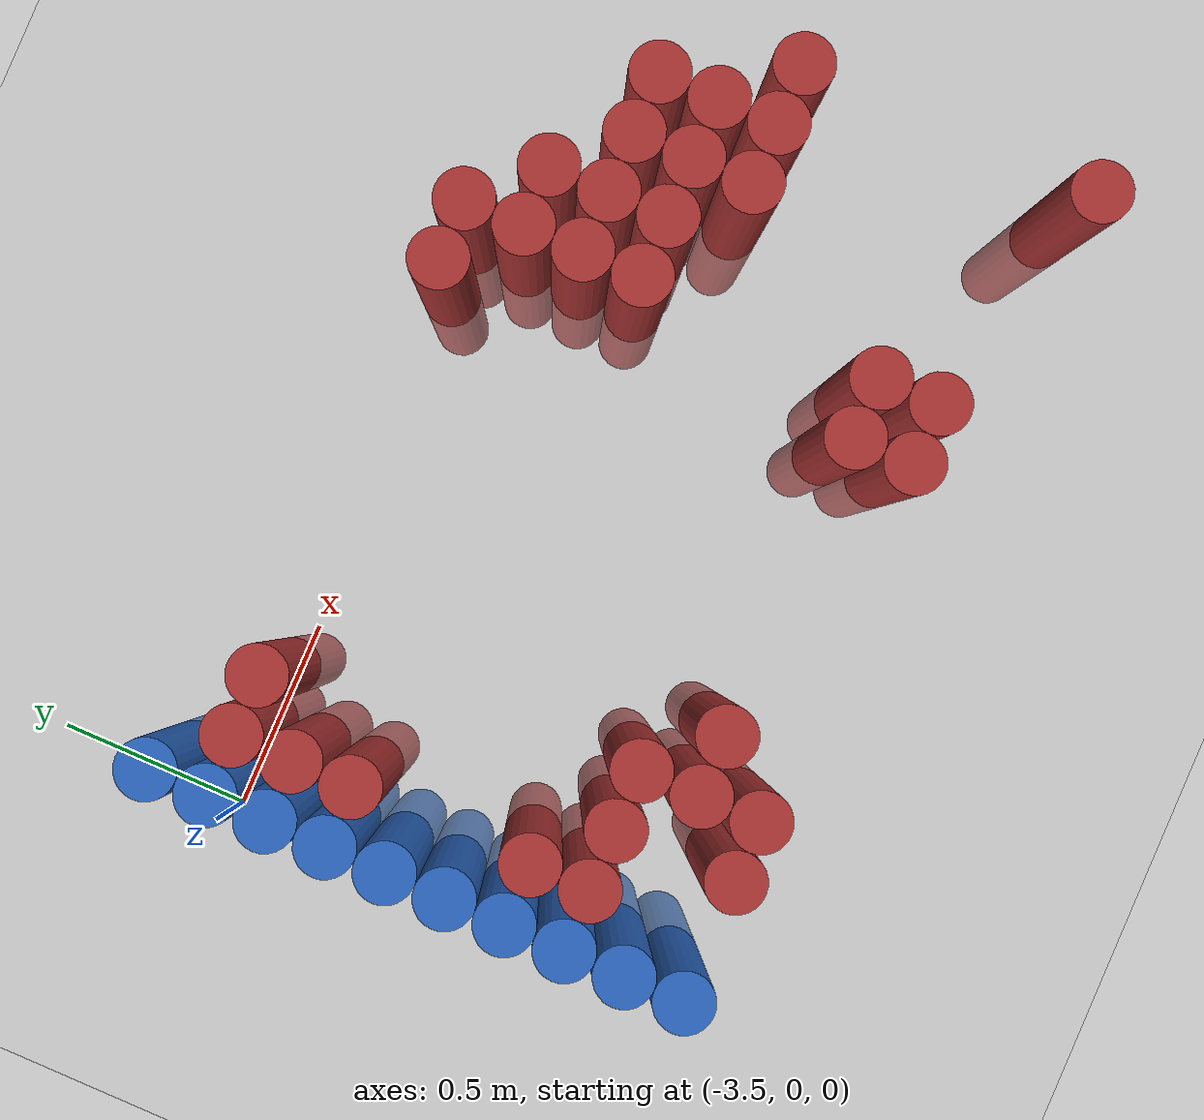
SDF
<sdf version="1.6">
 <world name="default">
  <model name="ground_plane">
   <static>1</static>
   <link name="link">
    <collision name="collision">
     <geometry><plane><normal>0 0 1</normal><size>100 100</size></plane></geometry>
     <surface><friction><ode><mu>100</mu><mu2>50</mu2></ode></friction></surface>
    </collision>
    <visual name="visual">
     <cast_shadows>0</cast_shadows>
     <geometry><plane><normal>0 0 1</normal><size>100 100</size></plane></geometry>
     <material>
      <script><uri>file://media/materials/scripts/gazebo.material</uri><name>Gazebo/Grey</name></script>
     </material>
    </visual>
   </link>
  </model>
  <model name="unit_cylinder_99">
   <static>1</static>
   <pose>-3.425000 -1.175000 0.000000 0.000000 0.000000 0.000000</pose>
   <link name="link">
    <inertial>
     <mass>1</mass>
     <inertia><ixx>0.145833</ixx><ixy>0</ixy><ixz>0</ixz><iyy>0.145833</iyy><iyz>0</iyz><izz>0.125</izz></inertia>
    </inertial>
    <collision name="collision">
     <geometry><cylinder><radius>0.075000</radius><length>1.5</length></cylinder></geometry>
    </collision>
    <visual name="visual">
     <geometry><cylinder><radius>0.075000</radius><length>1.5</length></cylinder></geometry>
     <material>
      <ambient>0.152000 0.379000 0.720000 1</ambient>
      <diffuse>0.152000 0.379000 0.720000 1</diffuse>
     </material>
     <material>
      <script><name>Gazebo/Grey</name><uri>file://media/materials/scripts/gazebo.material</uri></script>
     </material>
    </visual>
   </link>
  </model>
  <model name="unit_cylinder_101">
   <static>1</static>
   <pose>-3.425000 -1.025000 0.000000 0.000000 0.000000 0.000000</pose>
   <link name="link">
    <inertial>
     <mass>1</mass>
     <inertia><ixx>0.145833</ixx><ixy>0</ixy><ixz>0</ixz><iyy>0.145833</iyy><iyz>0</iyz><izz>0.125</izz></inertia>
    </inertial>
    <collision name="collision">
     <geometry><cylinder><radius>0.075000</radius><length>1.5</length></cylinder></geometry>
    </collision>
    <visual name="visual">
     <geometry><cylinder><radius>0.075000</radius><length>1.5</length></cylinder></geometry>
     <material>
      <ambient>0.152000 0.379000 0.720000 1</ambient>
      <diffuse>0.152000 0.379000 0.720000 1</diffuse>
     </material>
     <material>
      <script><name>Gazebo/Grey</name><uri>file://media/materials/scripts/gazebo.material</uri></script>
     </material>
    </visual>
   </link>
  </model>
  <model name="unit_cylinder_103">
   <static>1</static>
   <pose>-3.425000 -0.875000 0.000000 0.000000 0.000000 0.000000</pose>
   <link name="link">
    <inertial>
     <mass>1</mass>
     <inertia><ixx>0.145833</ixx><ixy>0</ixy><ixz>0</ixz><iyy>0.145833</iyy><iyz>0</iyz><izz>0.125</izz></inertia>
    </inertial>
    <collision name="collision">
     <geometry><cylinder><radius>0.075000</radius><length>1.5</length></cylinder></geometry>
    </collision>
    <visual name="visual">
     <geometry><cylinder><radius>0.075000</radius><length>1.5</length></cylinder></geometry>
     <material>
      <ambient>0.152000 0.379000 0.720000 1</ambient>
      <diffuse>0.152000 0.379000 0.720000 1</diffuse>
     </material>
     <material>
      <script><name>Gazebo/Grey</name><uri>file://media/materials/scripts/gazebo.material</uri></script>
     </material>
    </visual>
   </link>
  </model>
  <model name="unit_cylinder_105">
   <static>1</static>
   <pose>-3.425000 -0.725000 0.000000 0.000000 0.000000 0.000000</pose>
   <link name="link">
    <inertial>
     <mass>1</mass>
     <inertia><ixx>0.145833</ixx><ixy>0</ixy><ixz>0</ixz><iyy>0.145833</iyy><iyz>0</iyz><izz>0.125</izz></inertia>
    </inertial>
    <collision name="collision">
     <geometry><cylinder><radius>0.075000</radius><length>1.5</length></cylinder></geometry>
    </collision>
    <visual name="visual">
     <geometry><cylinder><radius>0.075000</radius><length>1.5</length></cylinder></geometry>
     <material>
      <ambient>0.152000 0.379000 0.720000 1</ambient>
      <diffuse>0.152000 0.379000 0.720000 1</diffuse>
     </material>
     <material>
      <script><name>Gazebo/Grey</name><uri>file://media/materials/scripts/gazebo.material</uri></script>
     </material>
    </visual>
   </link>
  </model>
  <model name="unit_cylinder_107">
   <static>1</static>
   <pose>-3.425000 -0.575000 0.000000 0.000000 0.000000 0.000000</pose>
   <link name="link">
    <inertial>
     <mass>1</mass>
     <inertia><ixx>0.145833</ixx><ixy>0</ixy><ixz>0</ixz><iyy>0.145833</iyy><iyz>0</iyz><izz>0.125</izz></inertia>
    </inertial>
    <collision name="collision">
     <geometry><cylinder><radius>0.075000</radius><length>1.5</length></cylinder></geometry>
    </collision>
    <visual name="visual">
     <geometry><cylinder><radius>0.075000</radius><length>1.5</length></cylinder></geometry>
     <material>
      <ambient>0.152000 0.379000 0.720000 1</ambient>
      <diffuse>0.152000 0.379000 0.720000 1</diffuse>
     </material>
     <material>
      <script><name>Gazebo/Grey</name><uri>file://media/materials/scripts/gazebo.material</uri></script>
     </material>
    </visual>
   </link>
  </model>
  <model name="unit_cylinder_109">
   <static>1</static>
   <pose>-3.425000 -0.425000 0.000000 0.000000 0.000000 0.000000</pose>
   <link name="link">
    <inertial>
     <mass>1</mass>
     <inertia><ixx>0.145833</ixx><ixy>0</ixy><ixz>0</ixz><iyy>0.145833</iyy><iyz>0</iyz><izz>0.125</izz></inertia>
    </inertial>
    <collision name="collision">
     <geometry><cylinder><radius>0.075000</radius><length>1.5</length></cylinder></geometry>
    </collision>
    <visual name="visual">
     <geometry><cylinder><radius>0.075000</radius><length>1.5</length></cylinder></geometry>
     <material>
      <ambient>0.152000 0.379000 0.720000 1</ambient>
      <diffuse>0.152000 0.379000 0.720000 1</diffuse>
     </material>
     <material>
      <script><name>Gazebo/Grey</name><uri>file://media/materials/scripts/gazebo.material</uri></script>
     </material>
    </visual>
   </link>
  </model>
  <model name="unit_cylinder_111">
   <static>1</static>
   <pose>-3.425000 -0.275000 0.000000 0.000000 0.000000 0.000000</pose>
   <link name="link">
    <inertial>
     <mass>1</mass>
     <inertia><ixx>0.145833</ixx><ixy>0</ixy><ixz>0</ixz><iyy>0.145833</iyy><iyz>0</iyz><izz>0.125</izz></inertia>
    </inertial>
    <collision name="collision">
     <geometry><cylinder><radius>0.075000</radius><length>1.5</length></cylinder></geometry>
    </collision>
    <visual name="visual">
     <geometry><cylinder><radius>0.075000</radius><length>1.5</length></cylinder></geometry>
     <material>
      <ambient>0.152000 0.379000 0.720000 1</ambient>
      <diffuse>0.152000 0.379000 0.720000 1</diffuse>
     </material>
     <material>
      <script><name>Gazebo/Grey</name><uri>file://media/materials/scripts/gazebo.material</uri></script>
     </material>
    </visual>
   </link>
  </model>
  <model name="unit_cylinder_113">
   <static>1</static>
   <pose>-3.425000 -0.125000 0.000000 0.000000 0.000000 0.000000</pose>
   <link name="link">
    <inertial>
     <mass>1</mass>
     <inertia><ixx>0.145833</ixx><ixy>0</ixy><ixz>0</ixz><iyy>0.145833</iyy><iyz>0</iyz><izz>0.125</izz></inertia>
    </inertial>
    <collision name="collision">
     <geometry><cylinder><radius>0.075000</radius><length>1.5</length></cylinder></geometry>
    </collision>
    <visual name="visual">
     <geometry><cylinder><radius>0.075000</radius><length>1.5</length></cylinder></geometry>
     <material>
      <ambient>0.152000 0.379000 0.720000 1</ambient>
      <diffuse>0.152000 0.379000 0.720000 1</diffuse>
     </material>
     <material>
      <script><name>Gazebo/Grey</name><uri>file://media/materials/scripts/gazebo.material</uri></script>
     </material>
    </visual>
   </link>
  </model>
  <model name="unit_cylinder_115">
   <static>1</static>
   <pose>-3.425000 0.025000 0.000000 0.000000 0.000000 0.000000</pose>
   <link name="link">
    <inertial>
     <mass>1</mass>
     <inertia><ixx>0.145833</ixx><ixy>0</ixy><ixz>0</ixz><iyy>0.145833</iyy><iyz>0</iyz><izz>0.125</izz></inertia>
    </inertial>
    <collision name="collision">
     <geometry><cylinder><radius>0.075000</radius><length>1.5</length></cylinder></geometry>
    </collision>
    <visual name="visual">
     <geometry><cylinder><radius>0.075000</radius><length>1.5</length></cylinder></geometry>
     <material>
      <ambient>0.152000 0.379000 0.720000 1</ambient>
      <diffuse>0.152000 0.379000 0.720000 1</diffuse>
     </material>
     <material>
      <script><name>Gazebo/Grey</name><uri>file://media/materials/scripts/gazebo.material</uri></script>
     </material>
    </visual>
   </link>
  </model>
  <model name="unit_cylinder_117">
   <static>1</static>
   <pose>-3.425000 0.175000 0.000000 0.000000 0.000000 0.000000</pose>
   <link name="link">
    <inertial>
     <mass>1</mass>
     <inertia><ixx>0.145833</ixx><ixy>0</ixy><ixz>0</ixz><iyy>0.145833</iyy><iyz>0</iyz><izz>0.125</izz></inertia>
    </inertial>
    <collision name="collision">
     <geometry><cylinder><radius>0.075000</radius><length>1.5</length></cylinder></geometry>
    </collision>
    <visual name="visual">
     <geometry><cylinder><radius>0.075000</radius><length>1.5</length></cylinder></geometry>
     <material>
      <ambient>0.152000 0.379000 0.720000 1</ambient>
      <diffuse>0.152000 0.379000 0.720000 1</diffuse>
     </material>
     <material>
      <script><name>Gazebo/Grey</name><uri>file://media/materials/scripts/gazebo.material</uri></script>
     </material>
    </visual>
   </link>
  </model>
  <model name="unit_cylinder_213">
   <static>1</static>
   <pose>-3.425000 -1.175000 0.000000 0.000000 0.000000 0.000000</pose>
   <link name="link">
    <inertial>
     <mass>1</mass>
     <inertia><ixx>0.145833</ixx><ixy>0</ixy><ixz>0</ixz><iyy>0.145833</iyy><iyz>0</iyz><izz>0.125</izz></inertia>
    </inertial>
    <collision name="collision">
     <geometry><cylinder><radius>0.075000</radius><length>1.5</length></cylinder></geometry>
    </collision>
    <visual name="visual">
     <geometry><cylinder><radius>0.075000</radius><length>1.5</length></cylinder></geometry>
     <material>
      <ambient>0.152000 0.379000 0.720000 1</ambient>
      <diffuse>0.152000 0.379000 0.720000 1</diffuse>
     </material>
     <material>
      <script><name>Gazebo/Grey</name><uri>file://media/materials/scripts/gazebo.material</uri></script>
     </material>
    </visual>
   </link>
  </model>
  <model name="unit_cylinder_214">
   <static>1</static>
   <pose>-3.425000 -1.025000 0.000000 0.000000 0.000000 0.000000</pose>
   <link name="link">
    <inertial>
     <mass>1</mass>
     <inertia><ixx>0.145833</ixx><ixy>0</ixy><ixz>0</ixz><iyy>0.145833</iyy><iyz>0</iyz><izz>0.125</izz></inertia>
    </inertial>
    <collision name="collision">
     <geometry><cylinder><radius>0.075000</radius><length>1.5</length></cylinder></geometry>
    </collision>
    <visual name="visual">
     <geometry><cylinder><radius>0.075000</radius><length>1.5</length></cylinder></geometry>
     <material>
      <ambient>0.152000 0.379000 0.720000 1</ambient>
      <diffuse>0.152000 0.379000 0.720000 1</diffuse>
     </material>
     <material>
      <script><name>Gazebo/Grey</name><uri>file://media/materials/scripts/gazebo.material</uri></script>
     </material>
    </visual>
   </link>
  </model>
  <model name="unit_cylinder_215">
   <static>1</static>
   <pose>-3.425000 -0.875000 0.000000 0.000000 0.000000 0.000000</pose>
   <link name="link">
    <inertial>
     <mass>1</mass>
     <inertia><ixx>0.145833</ixx><ixy>0</ixy><ixz>0</ixz><iyy>0.145833</iyy><iyz>0</iyz><izz>0.125</izz></inertia>
    </inertial>
    <collision name="collision">
     <geometry><cylinder><radius>0.075000</radius><length>1.5</length></cylinder></geometry>
    </collision>
    <visual name="visual">
     <geometry><cylinder><radius>0.075000</radius><length>1.5</length></cylinder></geometry>
     <material>
      <ambient>0.152000 0.379000 0.720000 1</ambient>
      <diffuse>0.152000 0.379000 0.720000 1</diffuse>
     </material>
     <material>
      <script><name>Gazebo/Grey</name><uri>file://media/materials/scripts/gazebo.material</uri></script>
     </material>
    </visual>
   </link>
  </model>
  <model name="unit_cylinder_216">
   <static>1</static>
   <pose>-3.425000 -0.725000 0.000000 0.000000 0.000000 0.000000</pose>
   <link name="link">
    <inertial>
     <mass>1</mass>
     <inertia><ixx>0.145833</ixx><ixy>0</ixy><ixz>0</ixz><iyy>0.145833</iyy><iyz>0</iyz><izz>0.125</izz></inertia>
    </inertial>
    <collision name="collision">
     <geometry><cylinder><radius>0.075000</radius><length>1.5</length></cylinder></geometry>
    </collision>
    <visual name="visual">
     <geometry><cylinder><radius>0.075000</radius><length>1.5</length></cylinder></geometry>
     <material>
      <ambient>0.152000 0.379000 0.720000 1</ambient>
      <diffuse>0.152000 0.379000 0.720000 1</diffuse>
     </material>
     <material>
      <script><name>Gazebo/Grey</name><uri>file://media/materials/scripts/gazebo.material</uri></script>
     </material>
    </visual>
   </link>
  </model>
  <model name="unit_cylinder_217">
   <static>1</static>
   <pose>-3.425000 -0.575000 0.000000 0.000000 0.000000 0.000000</pose>
   <link name="link">
    <inertial>
     <mass>1</mass>
     <inertia><ixx>0.145833</ixx><ixy>0</ixy><ixz>0</ixz><iyy>0.145833</iyy><iyz>0</iyz><izz>0.125</izz></inertia>
    </inertial>
    <collision name="collision">
     <geometry><cylinder><radius>0.075000</radius><length>1.5</length></cylinder></geometry>
    </collision>
    <visual name="visual">
     <geometry><cylinder><radius>0.075000</radius><length>1.5</length></cylinder></geometry>
     <material>
      <ambient>0.152000 0.379000 0.720000 1</ambient>
      <diffuse>0.152000 0.379000 0.720000 1</diffuse>
     </material>
     <material>
      <script><name>Gazebo/Grey</name><uri>file://media/materials/scripts/gazebo.material</uri></script>
     </material>
    </visual>
   </link>
  </model>
  <model name="unit_cylinder_218">
   <static>1</static>
   <pose>-3.425000 -0.425000 0.000000 0.000000 0.000000 0.000000</pose>
   <link name="link">
    <inertial>
     <mass>1</mass>
     <inertia><ixx>0.145833</ixx><ixy>0</ixy><ixz>0</ixz><iyy>0.145833</iyy><iyz>0</iyz><izz>0.125</izz></inertia>
    </inertial>
    <collision name="collision">
     <geometry><cylinder><radius>0.075000</radius><length>1.5</length></cylinder></geometry>
    </collision>
    <visual name="visual">
     <geometry><cylinder><radius>0.075000</radius><length>1.5</length></cylinder></geometry>
     <material>
      <ambient>0.152000 0.379000 0.720000 1</ambient>
      <diffuse>0.152000 0.379000 0.720000 1</diffuse>
     </material>
     <material>
      <script><name>Gazebo/Grey</name><uri>file://media/materials/scripts/gazebo.material</uri></script>
     </material>
    </visual>
   </link>
  </model>
  <model name="unit_cylinder_219">
   <static>1</static>
   <pose>-3.425000 -0.275000 0.000000 0.000000 0.000000 0.000000</pose>
   <link name="link">
    <inertial>
     <mass>1</mass>
     <inertia><ixx>0.145833</ixx><ixy>0</ixy><ixz>0</ixz><iyy>0.145833</iyy><iyz>0</iyz><izz>0.125</izz></inertia>
    </inertial>
    <collision name="collision">
     <geometry><cylinder><radius>0.075000</radius><length>1.5</length></cylinder></geometry>
    </collision>
    <visual name="visual">
     <geometry><cylinder><radius>0.075000</radius><length>1.5</length></cylinder></geometry>
     <material>
      <ambient>0.152000 0.379000 0.720000 1</ambient>
      <diffuse>0.152000 0.379000 0.720000 1</diffuse>
     </material>
     <material>
      <script><name>Gazebo/Grey</name><uri>file://media/materials/scripts/gazebo.material</uri></script>
     </material>
    </visual>
   </link>
  </model>
  <model name="unit_cylinder_220">
   <static>1</static>
   <pose>-3.425000 -0.125000 0.000000 0.000000 0.000000 0.000000</pose>
   <link name="link">
    <inertial>
     <mass>1</mass>
     <inertia><ixx>0.145833</ixx><ixy>0</ixy><ixz>0</ixz><iyy>0.145833</iyy><iyz>0</iyz><izz>0.125</izz></inertia>
    </inertial>
    <collision name="collision">
     <geometry><cylinder><radius>0.075000</radius><length>1.5</length></cylinder></geometry>
    </collision>
    <visual name="visual">
     <geometry><cylinder><radius>0.075000</radius><length>1.5</length></cylinder></geometry>
     <material>
      <ambient>0.152000 0.379000 0.720000 1</ambient>
      <diffuse>0.152000 0.379000 0.720000 1</diffuse>
     </material>
     <material>
      <script><name>Gazebo/Grey</name><uri>file://media/materials/scripts/gazebo.material</uri></script>
     </material>
    </visual>
   </link>
  </model>
  <model name="unit_cylinder_221">
   <static>1</static>
   <pose>-3.425000 0.025000 0.000000 0.000000 0.000000 0.000000</pose>
   <link name="link">
    <inertial>
     <mass>1</mass>
     <inertia><ixx>0.145833</ixx><ixy>0</ixy><ixz>0</ixz><iyy>0.145833</iyy><iyz>0</iyz><izz>0.125</izz></inertia>
    </inertial>
    <collision name="collision">
     <geometry><cylinder><radius>0.075000</radius><length>1.5</length></cylinder></geometry>
    </collision>
    <visual name="visual">
     <geometry><cylinder><radius>0.075000</radius><length>1.5</length></cylinder></geometry>
     <material>
      <ambient>0.152000 0.379000 0.720000 1</ambient>
      <diffuse>0.152000 0.379000 0.720000 1</diffuse>
     </material>
     <material>
      <script><name>Gazebo/Grey</name><uri>file://media/materials/scripts/gazebo.material</uri></script>
     </material>
    </visual>
   </link>
  </model>
  <model name="unit_cylinder_222">
   <static>1</static>
   <pose>-3.425000 0.175000 0.000000 0.000000 0.000000 0.000000</pose>
   <link name="link">
    <inertial>
     <mass>1</mass>
     <inertia><ixx>0.145833</ixx><ixy>0</ixy><ixz>0</ixz><iyy>0.145833</iyy><iyz>0</iyz><izz>0.125</izz></inertia>
    </inertial>
    <collision name="collision">
     <geometry><cylinder><radius>0.075000</radius><length>1.5</length></cylinder></geometry>
    </collision>
    <visual name="visual">
     <geometry><cylinder><radius>0.075000</radius><length>1.5</length></cylinder></geometry>
     <material>
      <ambient>0.152000 0.379000 0.720000 1</ambient>
      <diffuse>0.152000 0.379000 0.720000 1</diffuse>
     </material>
     <material>
      <script><name>Gazebo/Grey</name><uri>file://media/materials/scripts/gazebo.material</uri></script>
     </material>
    </visual>
   </link>
  </model>
  <model name="unit_cylinder_262">
   <static>1</static>
   <pose>-3.275000 -0.875000 0.000000 0.000000 0.000000 0.000000</pose>
   <link name="link">
    <inertial>
     <mass>1</mass>
     <inertia><ixx>0.145833</ixx><ixy>0</ixy><ixz>0</ixz><iyy>0.145833</iyy><iyz>0</iyz><izz>0.125</izz></inertia>
    </inertial>
    <collision name="collision">
     <geometry><cylinder><radius>0.075000</radius><length>1.5</length></cylinder></geometry>
    </collision>
    <visual name="visual">
     <geometry><cylinder><radius>0.075000</radius><length>1.5</length></cylinder></geometry>
     <material>
      <ambient>0.648000 0.192000 0.192000 1</ambient>
      <diffuse>0.648000 0.192000 0.192000 1</diffuse>
     </material>
     <material>
      <script><name>Gazebo/Grey</name><uri>file://media/materials/scripts/gazebo.material</uri></script>
     </material>
    </visual>
   </link>
  </model>
  <model name="unit_cylinder_263">
   <static>1</static>
   <pose>-3.275000 -0.725000 0.000000 0.000000 0.000000 0.000000</pose>
   <link name="link">
    <inertial>
     <mass>1</mass>
     <inertia><ixx>0.145833</ixx><ixy>0</ixy><ixz>0</ixz><iyy>0.145833</iyy><iyz>0</iyz><izz>0.125</izz></inertia>
    </inertial>
    <collision name="collision">
     <geometry><cylinder><radius>0.075000</radius><length>1.5</length></cylinder></geometry>
    </collision>
    <visual name="visual">
     <geometry><cylinder><radius>0.075000</radius><length>1.5</length></cylinder></geometry>
     <material>
      <ambient>0.648000 0.192000 0.192000 1</ambient>
      <diffuse>0.648000 0.192000 0.192000 1</diffuse>
     </material>
     <material>
      <script><name>Gazebo/Grey</name><uri>file://media/materials/scripts/gazebo.material</uri></script>
     </material>
    </visual>
   </link>
  </model>
  <model name="unit_cylinder_264">
   <static>1</static>
   <pose>-3.275000 -0.275000 0.000000 0.000000 0.000000 0.000000</pose>
   <link name="link">
    <inertial>
     <mass>1</mass>
     <inertia><ixx>0.145833</ixx><ixy>0</ixy><ixz>0</ixz><iyy>0.145833</iyy><iyz>0</iyz><izz>0.125</izz></inertia>
    </inertial>
    <collision name="collision">
     <geometry><cylinder><radius>0.075000</radius><length>1.5</length></cylinder></geometry>
    </collision>
    <visual name="visual">
     <geometry><cylinder><radius>0.075000</radius><length>1.5</length></cylinder></geometry>
     <material>
      <ambient>0.648000 0.192000 0.192000 1</ambient>
      <diffuse>0.648000 0.192000 0.192000 1</diffuse>
     </material>
     <material>
      <script><name>Gazebo/Grey</name><uri>file://media/materials/scripts/gazebo.material</uri></script>
     </material>
    </visual>
   </link>
  </model>
  <model name="unit_cylinder_265">
   <static>1</static>
   <pose>-3.275000 -0.125000 0.000000 0.000000 0.000000 0.000000</pose>
   <link name="link">
    <inertial>
     <mass>1</mass>
     <inertia><ixx>0.145833</ixx><ixy>0</ixy><ixz>0</ixz><iyy>0.145833</iyy><iyz>0</iyz><izz>0.125</izz></inertia>
    </inertial>
    <collision name="collision">
     <geometry><cylinder><radius>0.075000</radius><length>1.5</length></cylinder></geometry>
    </collision>
    <visual name="visual">
     <geometry><cylinder><radius>0.075000</radius><length>1.5</length></cylinder></geometry>
     <material>
      <ambient>0.648000 0.192000 0.192000 1</ambient>
      <diffuse>0.648000 0.192000 0.192000 1</diffuse>
     </material>
     <material>
      <script><name>Gazebo/Grey</name><uri>file://media/materials/scripts/gazebo.material</uri></script>
     </material>
    </visual>
   </link>
  </model>
  <model name="unit_cylinder_266">
   <static>1</static>
   <pose>-3.275000 0.025000 0.000000 0.000000 0.000000 0.000000</pose>
   <link name="link">
    <inertial>
     <mass>1</mass>
     <inertia><ixx>0.145833</ixx><ixy>0</ixy><ixz>0</ixz><iyy>0.145833</iyy><iyz>0</iyz><izz>0.125</izz></inertia>
    </inertial>
    <collision name="collision">
     <geometry><cylinder><radius>0.075000</radius><length>1.5</length></cylinder></geometry>
    </collision>
    <visual name="visual">
     <geometry><cylinder><radius>0.075000</radius><length>1.5</length></cylinder></geometry>
     <material>
      <ambient>0.648000 0.192000 0.192000 1</ambient>
      <diffuse>0.648000 0.192000 0.192000 1</diffuse>
     </material>
     <material>
      <script><name>Gazebo/Grey</name><uri>file://media/materials/scripts/gazebo.material</uri></script>
     </material>
    </visual>
   </link>
  </model>
  <model name="unit_cylinder_279">
   <static>1</static>
   <pose>-3.125000 -1.175000 0.000000 0.000000 0.000000 0.000000</pose>
   <link name="link">
    <inertial>
     <mass>1</mass>
     <inertia><ixx>0.145833</ixx><ixy>0</ixy><ixz>0</ixz><iyy>0.145833</iyy><iyz>0</iyz><izz>0.125</izz></inertia>
    </inertial>
    <collision name="collision">
     <geometry><cylinder><radius>0.075000</radius><length>1.5</length></cylinder></geometry>
    </collision>
    <visual name="visual">
     <geometry><cylinder><radius>0.075000</radius><length>1.5</length></cylinder></geometry>
     <material>
      <ambient>0.648000 0.192000 0.192000 1</ambient>
      <diffuse>0.648000 0.192000 0.192000 1</diffuse>
     </material>
     <material>
      <script><name>Gazebo/Grey</name><uri>file://media/materials/scripts/gazebo.material</uri></script>
     </material>
    </visual>
   </link>
  </model>
  <model name="unit_cylinder_280">
   <static>1</static>
   <pose>-3.125000 -0.875000 0.000000 0.000000 0.000000 0.000000</pose>
   <link name="link">
    <inertial>
     <mass>1</mass>
     <inertia><ixx>0.145833</ixx><ixy>0</ixy><ixz>0</ixz><iyy>0.145833</iyy><iyz>0</iyz><izz>0.125</izz></inertia>
    </inertial>
    <collision name="collision">
     <geometry><cylinder><radius>0.075000</radius><length>1.5</length></cylinder></geometry>
    </collision>
    <visual name="visual">
     <geometry><cylinder><radius>0.075000</radius><length>1.5</length></cylinder></geometry>
     <material>
      <ambient>0.648000 0.192000 0.192000 1</ambient>
      <diffuse>0.648000 0.192000 0.192000 1</diffuse>
     </material>
     <material>
      <script><name>Gazebo/Grey</name><uri>file://media/materials/scripts/gazebo.material</uri></script>
     </material>
    </visual>
   </link>
  </model>
  <model name="unit_cylinder_281">
   <static>1</static>
   <pose>-3.125000 0.025000 0.000000 0.000000 0.000000 0.000000</pose>
   <link name="link">
    <inertial>
     <mass>1</mass>
     <inertia><ixx>0.145833</ixx><ixy>0</ixy><ixz>0</ixz><iyy>0.145833</iyy><iyz>0</iyz><izz>0.125</izz></inertia>
    </inertial>
    <collision name="collision">
     <geometry><cylinder><radius>0.075000</radius><length>1.5</length></cylinder></geometry>
    </collision>
    <visual name="visual">
     <geometry><cylinder><radius>0.075000</radius><length>1.5</length></cylinder></geometry>
     <material>
      <ambient>0.648000 0.192000 0.192000 1</ambient>
      <diffuse>0.648000 0.192000 0.192000 1</diffuse>
     </material>
     <material>
      <script><name>Gazebo/Grey</name><uri>file://media/materials/scripts/gazebo.material</uri></script>
     </material>
    </visual>
   </link>
  </model>
  <model name="unit_cylinder_291">
   <static>1</static>
   <pose>-2.975000 -1.175000 0.000000 0.000000 0.000000 0.000000</pose>
   <link name="link">
    <inertial>
     <mass>1</mass>
     <inertia><ixx>0.145833</ixx><ixy>0</ixy><ixz>0</ixz><iyy>0.145833</iyy><iyz>0</iyz><izz>0.125</izz></inertia>
    </inertial>
    <collision name="collision">
     <geometry><cylinder><radius>0.075000</radius><length>1.5</length></cylinder></geometry>
    </collision>
    <visual name="visual">
     <geometry><cylinder><radius>0.075000</radius><length>1.5</length></cylinder></geometry>
     <material>
      <ambient>0.648000 0.192000 0.192000 1</ambient>
      <diffuse>0.648000 0.192000 0.192000 1</diffuse>
     </material>
     <material>
      <script><name>Gazebo/Grey</name><uri>file://media/materials/scripts/gazebo.material</uri></script>
     </material>
    </visual>
   </link>
  </model>
  <model name="unit_cylinder_292">
   <static>1</static>
   <pose>-2.975000 -1.025000 0.000000 0.000000 0.000000 0.000000</pose>
   <link name="link">
    <inertial>
     <mass>1</mass>
     <inertia><ixx>0.145833</ixx><ixy>0</ixy><ixz>0</ixz><iyy>0.145833</iyy><iyz>0</iyz><izz>0.125</izz></inertia>
    </inertial>
    <collision name="collision">
     <geometry><cylinder><radius>0.075000</radius><length>1.5</length></cylinder></geometry>
    </collision>
    <visual name="visual">
     <geometry><cylinder><radius>0.075000</radius><length>1.5</length></cylinder></geometry>
     <material>
      <ambient>0.648000 0.192000 0.192000 1</ambient>
      <diffuse>0.648000 0.192000 0.192000 1</diffuse>
     </material>
     <material>
      <script><name>Gazebo/Grey</name><uri>file://media/materials/scripts/gazebo.material</uri></script>
     </material>
    </visual>
   </link>
  </model>
  <model name="unit_cylinder_293">
   <static>1</static>
   <pose>-2.975000 -0.875000 0.000000 0.000000 0.000000 0.000000</pose>
   <link name="link">
    <inertial>
     <mass>1</mass>
     <inertia><ixx>0.145833</ixx><ixy>0</ixy><ixz>0</ixz><iyy>0.145833</iyy><iyz>0</iyz><izz>0.125</izz></inertia>
    </inertial>
    <collision name="collision">
     <geometry><cylinder><radius>0.075000</radius><length>1.5</length></cylinder></geometry>
    </collision>
    <visual name="visual">
     <geometry><cylinder><radius>0.075000</radius><length>1.5</length></cylinder></geometry>
     <material>
      <ambient>0.648000 0.192000 0.192000 1</ambient>
      <diffuse>0.648000 0.192000 0.192000 1</diffuse>
     </material>
     <material>
      <script><name>Gazebo/Grey</name><uri>file://media/materials/scripts/gazebo.material</uri></script>
     </material>
    </visual>
   </link>
  </model>
  <model name="unit_cylinder_306">
   <static>1</static>
   <pose>-2.825000 -1.025000 0.000000 0.000000 0.000000 0.000000</pose>
   <link name="link">
    <inertial>
     <mass>1</mass>
     <inertia><ixx>0.145833</ixx><ixy>0</ixy><ixz>0</ixz><iyy>0.145833</iyy><iyz>0</iyz><izz>0.125</izz></inertia>
    </inertial>
    <collision name="collision">
     <geometry><cylinder><radius>0.075000</radius><length>1.5</length></cylinder></geometry>
    </collision>
    <visual name="visual">
     <geometry><cylinder><radius>0.075000</radius><length>1.5</length></cylinder></geometry>
     <material>
      <ambient>0.648000 0.192000 0.192000 1</ambient>
      <diffuse>0.648000 0.192000 0.192000 1</diffuse>
     </material>
     <material>
      <script><name>Gazebo/Grey</name><uri>file://media/materials/scripts/gazebo.material</uri></script>
     </material>
    </visual>
   </link>
  </model>
  <model name="unit_cylinder_360">
   <static>1</static>
   <pose>-2.075000 -1.175000 0.000000 0.000000 0.000000 0.000000</pose>
   <link name="link">
    <inertial>
     <mass>1</mass>
     <inertia><ixx>0.145833</ixx><ixy>0</ixy><ixz>0</ixz><iyy>0.145833</iyy><iyz>0</iyz><izz>0.125</izz></inertia>
    </inertial>
    <collision name="collision">
     <geometry><cylinder><radius>0.075000</radius><length>1.5</length></cylinder></geometry>
    </collision>
    <visual name="visual">
     <geometry><cylinder><radius>0.075000</radius><length>1.5</length></cylinder></geometry>
     <material>
      <ambient>0.648000 0.192000 0.192000 1</ambient>
      <diffuse>0.648000 0.192000 0.192000 1</diffuse>
     </material>
     <material>
      <script><name>Gazebo/Grey</name><uri>file://media/materials/scripts/gazebo.material</uri></script>
     </material>
    </visual>
   </link>
  </model>
  <model name="unit_cylinder_361">
   <static>1</static>
   <pose>-2.075000 -1.025000 0.000000 0.000000 0.000000 0.000000</pose>
   <link name="link">
    <inertial>
     <mass>1</mass>
     <inertia><ixx>0.145833</ixx><ixy>0</ixy><ixz>0</ixz><iyy>0.145833</iyy><iyz>0</iyz><izz>0.125</izz></inertia>
    </inertial>
    <collision name="collision">
     <geometry><cylinder><radius>0.075000</radius><length>1.5</length></cylinder></geometry>
    </collision>
    <visual name="visual">
     <geometry><cylinder><radius>0.075000</radius><length>1.5</length></cylinder></geometry>
     <material>
      <ambient>0.648000 0.192000 0.192000 1</ambient>
      <diffuse>0.648000 0.192000 0.192000 1</diffuse>
     </material>
     <material>
      <script><name>Gazebo/Grey</name><uri>file://media/materials/scripts/gazebo.material</uri></script>
     </material>
    </visual>
   </link>
  </model>
  <model name="unit_cylinder_362">
   <static>1</static>
   <pose>-2.075000 0.025000 0.000000 0.000000 0.000000 0.000000</pose>
   <link name="link">
    <inertial>
     <mass>1</mass>
     <inertia><ixx>0.145833</ixx><ixy>0</ixy><ixz>0</ixz><iyy>0.145833</iyy><iyz>0</iyz><izz>0.125</izz></inertia>
    </inertial>
    <collision name="collision">
     <geometry><cylinder><radius>0.075000</radius><length>1.5</length></cylinder></geometry>
    </collision>
    <visual name="visual">
     <geometry><cylinder><radius>0.075000</radius><length>1.5</length></cylinder></geometry>
     <material>
      <ambient>0.648000 0.192000 0.192000 1</ambient>
      <diffuse>0.648000 0.192000 0.192000 1</diffuse>
     </material>
     <material>
      <script><name>Gazebo/Grey</name><uri>file://media/materials/scripts/gazebo.material</uri></script>
     </material>
    </visual>
   </link>
  </model>
  <model name="unit_cylinder_370">
   <static>1</static>
   <pose>-1.925000 -1.175000 0.000000 0.000000 0.000000 0.000000</pose>
   <link name="link">
    <inertial>
     <mass>1</mass>
     <inertia><ixx>0.145833</ixx><ixy>0</ixy><ixz>0</ixz><iyy>0.145833</iyy><iyz>0</iyz><izz>0.125</izz></inertia>
    </inertial>
    <collision name="collision">
     <geometry><cylinder><radius>0.075000</radius><length>1.5</length></cylinder></geometry>
    </collision>
    <visual name="visual">
     <geometry><cylinder><radius>0.075000</radius><length>1.5</length></cylinder></geometry>
     <material>
      <ambient>0.648000 0.192000 0.192000 1</ambient>
      <diffuse>0.648000 0.192000 0.192000 1</diffuse>
     </material>
     <material>
      <script><name>Gazebo/Grey</name><uri>file://media/materials/scripts/gazebo.material</uri></script>
     </material>
    </visual>
   </link>
  </model>
  <model name="unit_cylinder_371">
   <static>1</static>
   <pose>-1.925000 -1.025000 0.000000 0.000000 0.000000 0.000000</pose>
   <link name="link">
    <inertial>
     <mass>1</mass>
     <inertia><ixx>0.145833</ixx><ixy>0</ixy><ixz>0</ixz><iyy>0.145833</iyy><iyz>0</iyz><izz>0.125</izz></inertia>
    </inertial>
    <collision name="collision">
     <geometry><cylinder><radius>0.075000</radius><length>1.5</length></cylinder></geometry>
    </collision>
    <visual name="visual">
     <geometry><cylinder><radius>0.075000</radius><length>1.5</length></cylinder></geometry>
     <material>
      <ambient>0.648000 0.192000 0.192000 1</ambient>
      <diffuse>0.648000 0.192000 0.192000 1</diffuse>
     </material>
     <material>
      <script><name>Gazebo/Grey</name><uri>file://media/materials/scripts/gazebo.material</uri></script>
     </material>
    </visual>
   </link>
  </model>
  <model name="unit_cylinder_372">
   <static>1</static>
   <pose>-1.925000 -0.425000 0.000000 0.000000 0.000000 0.000000</pose>
   <link name="link">
    <inertial>
     <mass>1</mass>
     <inertia><ixx>0.145833</ixx><ixy>0</ixy><ixz>0</ixz><iyy>0.145833</iyy><iyz>0</iyz><izz>0.125</izz></inertia>
    </inertial>
    <collision name="collision">
     <geometry><cylinder><radius>0.075000</radius><length>1.5</length></cylinder></geometry>
    </collision>
    <visual name="visual">
     <geometry><cylinder><radius>0.075000</radius><length>1.5</length></cylinder></geometry>
     <material>
      <ambient>0.648000 0.192000 0.192000 1</ambient>
      <diffuse>0.648000 0.192000 0.192000 1</diffuse>
     </material>
     <material>
      <script><name>Gazebo/Grey</name><uri>file://media/materials/scripts/gazebo.material</uri></script>
     </material>
    </visual>
   </link>
  </model>
  <model name="unit_cylinder_373">
   <static>1</static>
   <pose>-1.925000 -0.275000 0.000000 0.000000 0.000000 0.000000</pose>
   <link name="link">
    <inertial>
     <mass>1</mass>
     <inertia><ixx>0.145833</ixx><ixy>0</ixy><ixz>0</ixz><iyy>0.145833</iyy><iyz>0</iyz><izz>0.125</izz></inertia>
    </inertial>
    <collision name="collision">
     <geometry><cylinder><radius>0.075000</radius><length>1.5</length></cylinder></geometry>
    </collision>
    <visual name="visual">
     <geometry><cylinder><radius>0.075000</radius><length>1.5</length></cylinder></geometry>
     <material>
      <ambient>0.648000 0.192000 0.192000 1</ambient>
      <diffuse>0.648000 0.192000 0.192000 1</diffuse>
     </material>
     <material>
      <script><name>Gazebo/Grey</name><uri>file://media/materials/scripts/gazebo.material</uri></script>
     </material>
    </visual>
   </link>
  </model>
  <model name="unit_cylinder_374">
   <static>1</static>
   <pose>-1.925000 -0.125000 0.000000 0.000000 0.000000 0.000000</pose>
   <link name="link">
    <inertial>
     <mass>1</mass>
     <inertia><ixx>0.145833</ixx><ixy>0</ixy><ixz>0</ixz><iyy>0.145833</iyy><iyz>0</iyz><izz>0.125</izz></inertia>
    </inertial>
    <collision name="collision">
     <geometry><cylinder><radius>0.075000</radius><length>1.5</length></cylinder></geometry>
    </collision>
    <visual name="visual">
     <geometry><cylinder><radius>0.075000</radius><length>1.5</length></cylinder></geometry>
     <material>
      <ambient>0.648000 0.192000 0.192000 1</ambient>
      <diffuse>0.648000 0.192000 0.192000 1</diffuse>
     </material>
     <material>
      <script><name>Gazebo/Grey</name><uri>file://media/materials/scripts/gazebo.material</uri></script>
     </material>
    </visual>
   </link>
  </model>
  <model name="unit_cylinder_375">
   <static>1</static>
   <pose>-1.925000 0.025000 0.000000 0.000000 0.000000 0.000000</pose>
   <link name="link">
    <inertial>
     <mass>1</mass>
     <inertia><ixx>0.145833</ixx><ixy>0</ixy><ixz>0</ixz><iyy>0.145833</iyy><iyz>0</iyz><izz>0.125</izz></inertia>
    </inertial>
    <collision name="collision">
     <geometry><cylinder><radius>0.075000</radius><length>1.5</length></cylinder></geometry>
    </collision>
    <visual name="visual">
     <geometry><cylinder><radius>0.075000</radius><length>1.5</length></cylinder></geometry>
     <material>
      <ambient>0.648000 0.192000 0.192000 1</ambient>
      <diffuse>0.648000 0.192000 0.192000 1</diffuse>
     </material>
     <material>
      <script><name>Gazebo/Grey</name><uri>file://media/materials/scripts/gazebo.material</uri></script>
     </material>
    </visual>
   </link>
  </model>
  <model name="unit_cylinder_381">
   <static>1</static>
   <pose>-1.775000 -0.425000 0.000000 0.000000 0.000000 0.000000</pose>
   <link name="link">
    <inertial>
     <mass>1</mass>
     <inertia><ixx>0.145833</ixx><ixy>0</ixy><ixz>0</ixz><iyy>0.145833</iyy><iyz>0</iyz><izz>0.125</izz></inertia>
    </inertial>
    <collision name="collision">
     <geometry><cylinder><radius>0.075000</radius><length>1.5</length></cylinder></geometry>
    </collision>
    <visual name="visual">
     <geometry><cylinder><radius>0.075000</radius><length>1.5</length></cylinder></geometry>
     <material>
      <ambient>0.648000 0.192000 0.192000 1</ambient>
      <diffuse>0.648000 0.192000 0.192000 1</diffuse>
     </material>
     <material>
      <script><name>Gazebo/Grey</name><uri>file://media/materials/scripts/gazebo.material</uri></script>
     </material>
    </visual>
   </link>
  </model>
  <model name="unit_cylinder_382">
   <static>1</static>
   <pose>-1.775000 -0.275000 0.000000 0.000000 0.000000 0.000000</pose>
   <link name="link">
    <inertial>
     <mass>1</mass>
     <inertia><ixx>0.145833</ixx><ixy>0</ixy><ixz>0</ixz><iyy>0.145833</iyy><iyz>0</iyz><izz>0.125</izz></inertia>
    </inertial>
    <collision name="collision">
     <geometry><cylinder><radius>0.075000</radius><length>1.5</length></cylinder></geometry>
    </collision>
    <visual name="visual">
     <geometry><cylinder><radius>0.075000</radius><length>1.5</length></cylinder></geometry>
     <material>
      <ambient>0.648000 0.192000 0.192000 1</ambient>
      <diffuse>0.648000 0.192000 0.192000 1</diffuse>
     </material>
     <material>
      <script><name>Gazebo/Grey</name><uri>file://media/materials/scripts/gazebo.material</uri></script>
     </material>
    </visual>
   </link>
  </model>
  <model name="unit_cylinder_383">
   <static>1</static>
   <pose>-1.775000 -0.125000 0.000000 0.000000 0.000000 0.000000</pose>
   <link name="link">
    <inertial>
     <mass>1</mass>
     <inertia><ixx>0.145833</ixx><ixy>0</ixy><ixz>0</ixz><iyy>0.145833</iyy><iyz>0</iyz><izz>0.125</izz></inertia>
    </inertial>
    <collision name="collision">
     <geometry><cylinder><radius>0.075000</radius><length>1.5</length></cylinder></geometry>
    </collision>
    <visual name="visual">
     <geometry><cylinder><radius>0.075000</radius><length>1.5</length></cylinder></geometry>
     <material>
      <ambient>0.648000 0.192000 0.192000 1</ambient>
      <diffuse>0.648000 0.192000 0.192000 1</diffuse>
     </material>
     <material>
      <script><name>Gazebo/Grey</name><uri>file://media/materials/scripts/gazebo.material</uri></script>
     </material>
    </visual>
   </link>
  </model>
  <model name="unit_cylinder_391">
   <static>1</static>
   <pose>-1.625000 -0.575000 0.000000 0.000000 0.000000 0.000000</pose>
   <link name="link">
    <inertial>
     <mass>1</mass>
     <inertia><ixx>0.145833</ixx><ixy>0</ixy><ixz>0</ixz><iyy>0.145833</iyy><iyz>0</iyz><izz>0.125</izz></inertia>
    </inertial>
    <collision name="collision">
     <geometry><cylinder><radius>0.075000</radius><length>1.5</length></cylinder></geometry>
    </collision>
    <visual name="visual">
     <geometry><cylinder><radius>0.075000</radius><length>1.5</length></cylinder></geometry>
     <material>
      <ambient>0.648000 0.192000 0.192000 1</ambient>
      <diffuse>0.648000 0.192000 0.192000 1</diffuse>
     </material>
     <material>
      <script><name>Gazebo/Grey</name><uri>file://media/materials/scripts/gazebo.material</uri></script>
     </material>
    </visual>
   </link>
  </model>
  <model name="unit_cylinder_392">
   <static>1</static>
   <pose>-1.625000 -0.425000 0.000000 0.000000 0.000000 0.000000</pose>
   <link name="link">
    <inertial>
     <mass>1</mass>
     <inertia><ixx>0.145833</ixx><ixy>0</ixy><ixz>0</ixz><iyy>0.145833</iyy><iyz>0</iyz><izz>0.125</izz></inertia>
    </inertial>
    <collision name="collision">
     <geometry><cylinder><radius>0.075000</radius><length>1.5</length></cylinder></geometry>
    </collision>
    <visual name="visual">
     <geometry><cylinder><radius>0.075000</radius><length>1.5</length></cylinder></geometry>
     <material>
      <ambient>0.648000 0.192000 0.192000 1</ambient>
      <diffuse>0.648000 0.192000 0.192000 1</diffuse>
     </material>
     <material>
      <script><name>Gazebo/Grey</name><uri>file://media/materials/scripts/gazebo.material</uri></script>
     </material>
    </visual>
   </link>
  </model>
  <model name="unit_cylinder_393">
   <static>1</static>
   <pose>-1.625000 -0.275000 0.000000 0.000000 0.000000 0.000000</pose>
   <link name="link">
    <inertial>
     <mass>1</mass>
     <inertia><ixx>0.145833</ixx><ixy>0</ixy><ixz>0</ixz><iyy>0.145833</iyy><iyz>0</iyz><izz>0.125</izz></inertia>
    </inertial>
    <collision name="collision">
     <geometry><cylinder><radius>0.075000</radius><length>1.5</length></cylinder></geometry>
    </collision>
    <visual name="visual">
     <geometry><cylinder><radius>0.075000</radius><length>1.5</length></cylinder></geometry>
     <material>
      <ambient>0.648000 0.192000 0.192000 1</ambient>
      <diffuse>0.648000 0.192000 0.192000 1</diffuse>
     </material>
     <material>
      <script><name>Gazebo/Grey</name><uri>file://media/materials/scripts/gazebo.material</uri></script>
     </material>
    </visual>
   </link>
  </model>
  <model name="unit_cylinder_403">
   <static>1</static>
   <pose>-1.475000 -0.575000 0.000000 0.000000 0.000000 0.000000</pose>
   <link name="link">
    <inertial>
     <mass>1</mass>
     <inertia><ixx>0.145833</ixx><ixy>0</ixy><ixz>0</ixz><iyy>0.145833</iyy><iyz>0</iyz><izz>0.125</izz></inertia>
    </inertial>
    <collision name="collision">
     <geometry><cylinder><radius>0.075000</radius><length>1.5</length></cylinder></geometry>
    </collision>
    <visual name="visual">
     <geometry><cylinder><radius>0.075000</radius><length>1.5</length></cylinder></geometry>
     <material>
      <ambient>0.648000 0.192000 0.192000 1</ambient>
      <diffuse>0.648000 0.192000 0.192000 1</diffuse>
     </material>
     <material>
      <script><name>Gazebo/Grey</name><uri>file://media/materials/scripts/gazebo.material</uri></script>
     </material>
    </visual>
   </link>
  </model>
  <model name="unit_cylinder_404">
   <static>1</static>
   <pose>-1.475000 -0.425000 0.000000 0.000000 0.000000 0.000000</pose>
   <link name="link">
    <inertial>
     <mass>1</mass>
     <inertia><ixx>0.145833</ixx><ixy>0</ixy><ixz>0</ixz><iyy>0.145833</iyy><iyz>0</iyz><izz>0.125</izz></inertia>
    </inertial>
    <collision name="collision">
     <geometry><cylinder><radius>0.075000</radius><length>1.5</length></cylinder></geometry>
    </collision>
    <visual name="visual">
     <geometry><cylinder><radius>0.075000</radius><length>1.5</length></cylinder></geometry>
     <material>
      <ambient>0.648000 0.192000 0.192000 1</ambient>
      <diffuse>0.648000 0.192000 0.192000 1</diffuse>
     </material>
     <material>
      <script><name>Gazebo/Grey</name><uri>file://media/materials/scripts/gazebo.material</uri></script>
     </material>
    </visual>
   </link>
  </model>
  <model name="unit_cylinder_405">
   <static>1</static>
   <pose>-1.475000 -0.275000 0.000000 0.000000 0.000000 0.000000</pose>
   <link name="link">
    <inertial>
     <mass>1</mass>
     <inertia><ixx>0.145833</ixx><ixy>0</ixy><ixz>0</ixz><iyy>0.145833</iyy><iyz>0</iyz><izz>0.125</izz></inertia>
    </inertial>
    <collision name="collision">
     <geometry><cylinder><radius>0.075000</radius><length>1.5</length></cylinder></geometry>
    </collision>
    <visual name="visual">
     <geometry><cylinder><radius>0.075000</radius><length>1.5</length></cylinder></geometry>
     <material>
      <ambient>0.648000 0.192000 0.192000 1</ambient>
      <diffuse>0.648000 0.192000 0.192000 1</diffuse>
     </material>
     <material>
      <script><name>Gazebo/Grey</name><uri>file://media/materials/scripts/gazebo.material</uri></script>
     </material>
    </visual>
   </link>
  </model>
  <model name="unit_cylinder_412">
   <static>1</static>
   <pose>-1.325000 -1.325000 0.000000 0.000000 0.000000 0.000000</pose>
   <link name="link">
    <inertial>
     <mass>1</mass>
     <inertia><ixx>0.145833</ixx><ixy>0</ixy><ixz>0</ixz><iyy>0.145833</iyy><iyz>0</iyz><izz>0.125</izz></inertia>
    </inertial>
    <collision name="collision">
     <geometry><cylinder><radius>0.075000</radius><length>1.5</length></cylinder></geometry>
    </collision>
    <visual name="visual">
     <geometry><cylinder><radius>0.075000</radius><length>1.5</length></cylinder></geometry>
     <material>
      <ambient>0.648000 0.192000 0.192000 1</ambient>
      <diffuse>0.648000 0.192000 0.192000 1</diffuse>
     </material>
     <material>
      <script><name>Gazebo/Grey</name><uri>file://media/materials/scripts/gazebo.material</uri></script>
     </material>
    </visual>
   </link>
  </model>
  <model name="unit_cylinder_413">
   <static>1</static>
   <pose>-1.325000 -0.575000 0.000000 0.000000 0.000000 0.000000</pose>
   <link name="link">
    <inertial>
     <mass>1</mass>
     <inertia><ixx>0.145833</ixx><ixy>0</ixy><ixz>0</ixz><iyy>0.145833</iyy><iyz>0</iyz><izz>0.125</izz></inertia>
    </inertial>
    <collision name="collision">
     <geometry><cylinder><radius>0.075000</radius><length>1.5</length></cylinder></geometry>
    </collision>
    <visual name="visual">
     <geometry><cylinder><radius>0.075000</radius><length>1.5</length></cylinder></geometry>
     <material>
      <ambient>0.648000 0.192000 0.192000 1</ambient>
      <diffuse>0.648000 0.192000 0.192000 1</diffuse>
     </material>
     <material>
      <script><name>Gazebo/Grey</name><uri>file://media/materials/scripts/gazebo.material</uri></script>
     </material>
    </visual>
   </link>
  </model>
 </world>
</sdf>
